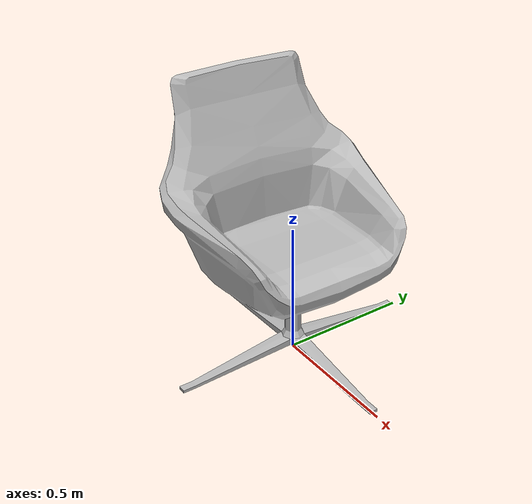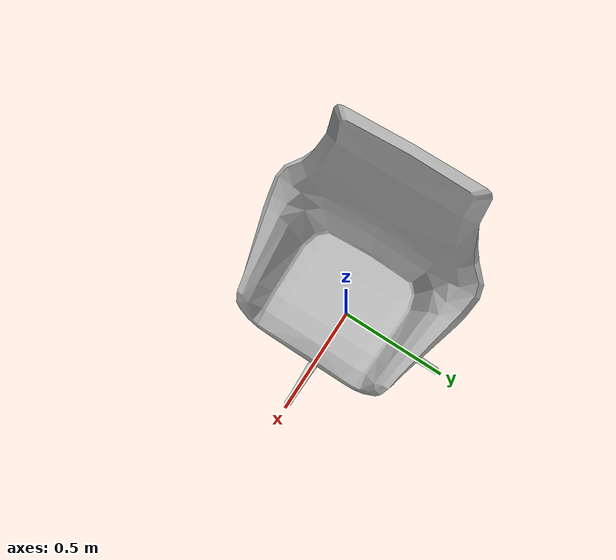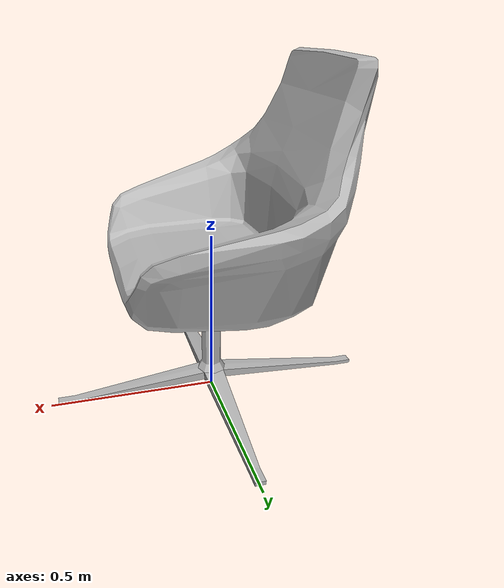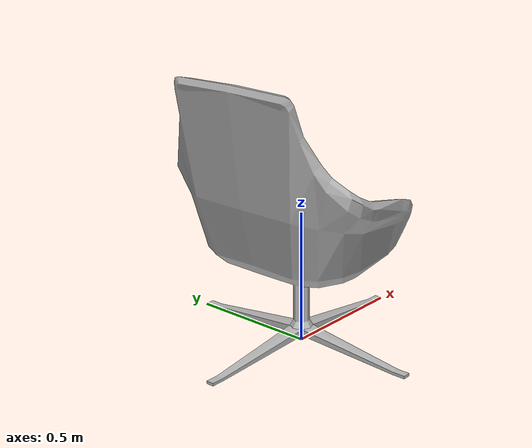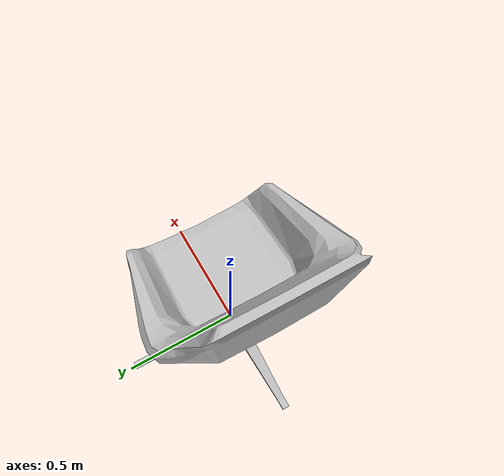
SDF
<sdf version="1.5">
  <model name="hangout_chair">
    <static>true</static>
    <link name="link">

      <pose>0 0 0 0 0 -1.57079632679</pose>
      <collision name="collision">
        <pose>0.001581 0.000308 0.529056 0 0 0</pose>
        <geometry>
          <cylinder>
            <radius>0.43</radius>
            <length>1.05</length>
          </cylinder>
        </geometry>
      </collision>
      <visual name="visual">
        <geometry>
          <mesh>
            <uri>model://hangout_chair/meshes/hangout_chair.obj</uri>
            <scale>0.01 0.01 0.01</scale>
          </mesh>
        </geometry>
      </visual>
    </link>
  </model>
</sdf>
